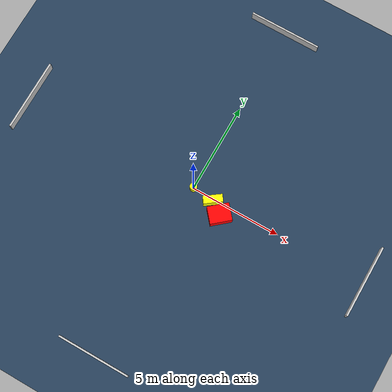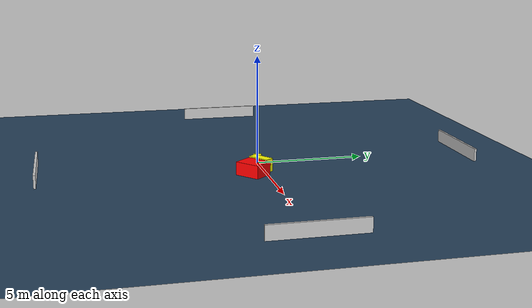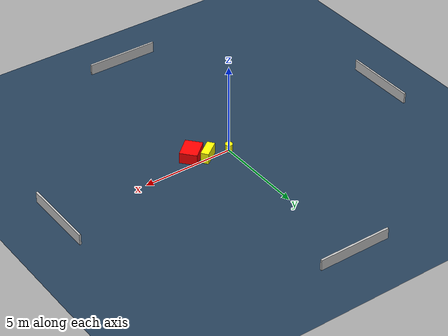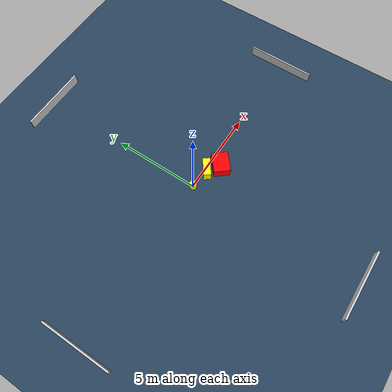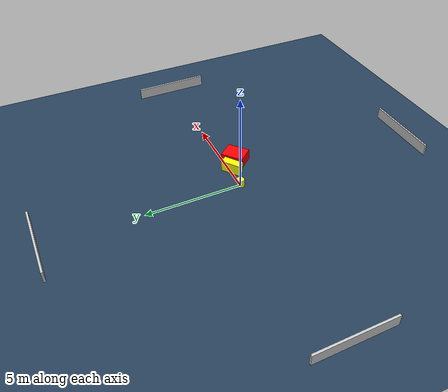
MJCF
<?xml version="1.0" ?>
<mujoco model="generated_environment">
  <option timestep="0.01" integrator="RK4" cone="elliptic"/>
  <default>
    <geom density="1"/>
  </default>
  <asset>
    <texture builtin="gradient" height="3072" name="skybox" rgb1="0.3 0.5 0.7" rgb2="0 0 0" type="skybox" width="512"/>
    <texture builtin="checker" height="300" name="groundplane" rgb1="0.2 0.3 0.4" rgb2="0.1 0.2 0.3" type="2d" width="300"/>
    <material name="groundplane" reflectance="0.2" texrepeat="5 5" texture="groundplane"/>
  </asset>
  <worldbody>
    <light dir="0 0 -1" directional="true" pos="0 0 1.5"/>
    <geom condim="3" friction="0.5 0.005 0.001" material="groundplane" name="floor" pos="0 0 0" size="0 0 0.05" type="plane"/>
    <body name="walls">
      <geom name="wall_1" condim="4" pos="-10.0 0.0 0.3" rgba="0.800000011920929 0.800000011920929 0.800000011920929 1.0" size="0.05 2.0 0.3" type="box"/>
      <geom name="wall_2" condim="4" pos="10.0 0.0 0.3" rgba="0.800000011920929 0.800000011920929 0.800000011920929 1.0" size="0.05 2.0 0.3" type="box"/>
      <geom name="wall_3" condim="4" pos="0.0 -10.0 0.3" rgba="0.800000011920929 0.800000011920929 0.800000011920929 1.0" size="2.0 0.05 0.3" type="box"/>
      <geom name="wall_4" condim="4" pos="0.0 10.0 0.3" rgba="0.800000011920929 0.800000011920929 0.800000011920929 1.0" size="2.0 0.05 0.3" type="box"/>
    </body>
    <body name="robot">
      <joint name="joint_x" type="slide" pos="0 0 0" axis="1 0 0"/>
      <joint name="joint_y" type="slide" pos="0 0 0" axis="0 1 0"/>
      <geom name="robot" type="cylinder" pos="0.0 0.0 0.2" size="0.2 0.2 0.0" mass="5.0" friction="1.0 0.005 0.0001" condim="4" rgba="1.0 1.0 0.0 1.0"/>
    </body>
    <body name="obstacle_1_movable">
      <geom name="obstacle_1_movable" condim="4" pos="1.2201756905273808 -0.10660115950679773 0.3" euler="0 0 36.13780928563336" friction="0.0 0.005 0.001" rgba="1.0 1.0 0.0 1.0" size="0.5194075050100344 0.21041008014575116 0.3" type="box" mass="0.1"/>
      <joint type="free"/>
    </body>
    <body name="obstacle_2_static">
      <geom name="obstacle_2_static" condim="4" pos="1.892833805607207 -0.605529877382315 0.3" euler="0 0 220.6115261339122" friction="0.0 0.005 0.001" rgba="1.0 0.0 0.0 1.0" size="0.5895824203486056 0.46910357994401214 0.3" type="box"/>
    </body>
  </worldbody>
  <actuator>
    <motor name="actuator_x" joint="joint_x" gear="1" ctrlrange="-1 1"/>
    <motor name="actuator_y" joint="joint_y" gear="1" ctrlrange="-1 1"/>
  </actuator>
</mujoco>
